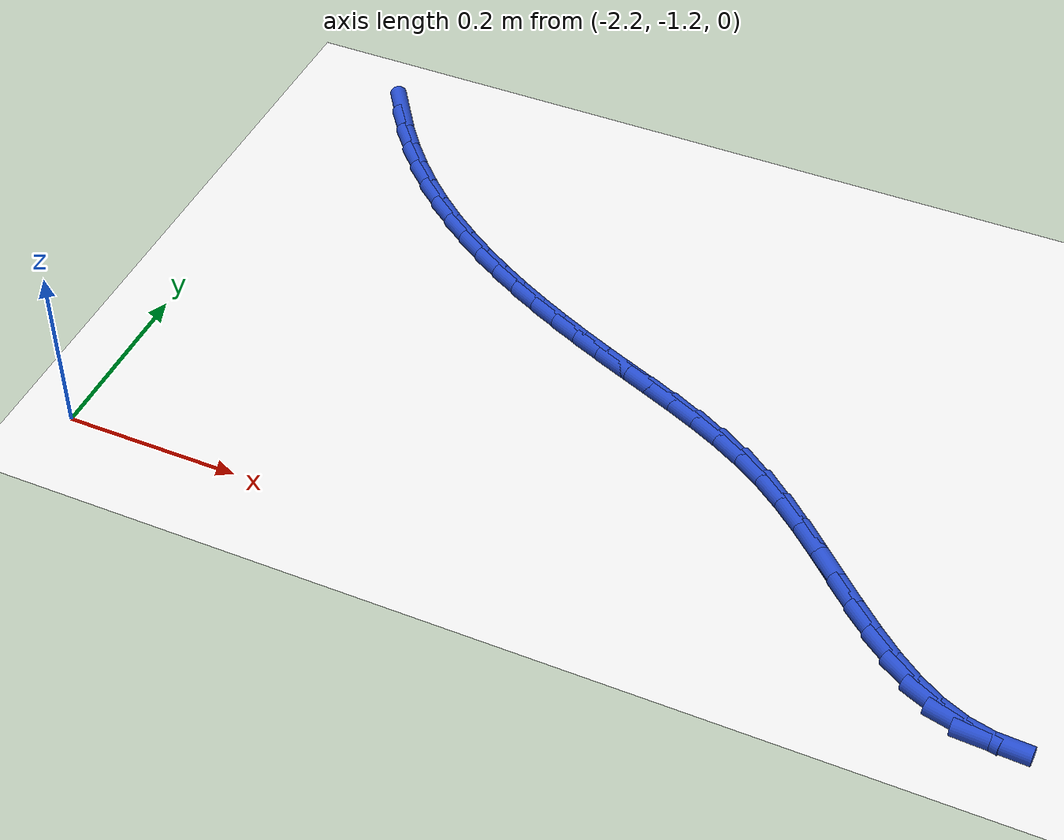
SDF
<sdf version="1.6">
 <world name="default">
  <model name="ground_plane">
   <static>1</static>
   <link name="link">
    <collision name="collision">
     <geometry><plane><normal>0 0 1</normal><size>100 100</size></plane></geometry>
     <surface><friction><ode><mu>100</mu><mu2>50</mu2></ode></friction></surface>
    </collision>
    <visual name="visual">
     <cast_shadows>0</cast_shadows>
     <geometry><plane><normal>0 0 1</normal><size>100 100</size></plane></geometry>
     <material>
      <script><uri>file://media/materials/scripts/gazebo.material</uri><name>Gazebo/WhiteGlow</name></script>
     </material>
    </visual>
   </link>
  </model>
  <model name="line">
   <link name="link_116">
    <pose>-2.1059230437652556 -0.5837642802311401 0.01 0 1.57 -0.9792117874503449</pose>
    <collision name="collision">
     <geometry><cylinder><radius>0.01</radius><length>0.08</length></cylinder></geometry>
    </collision>
    <visual name="visual">
     <material>
      <script><name>Gazebo/Blue</name><uri>file://media/materials/scripts/gazebo.material</uri></script>
     </material>
     <geometry><cylinder><radius>0.01</radius><length>0.08</length></cylinder></geometry>
    </visual>
   </link>
   <link name="link_117">
    <pose>-2.0852035942034113 -0.6146035414293193 0.01 0 1.57 -0.9177109253650406</pose>
    <collision name="collision">
     <geometry><cylinder><radius>0.01</radius><length>0.08</length></cylinder></geometry>
    </collision>
    <visual name="visual">
     <material>
      <script><name>Gazebo/Blue</name><uri>file://media/materials/scripts/gazebo.material</uri></script>
     </material>
     <geometry><cylinder><radius>0.01</radius><length>0.08</length></cylinder></geometry>
    </visual>
   </link>
   <link name="link_118">
    <pose>-2.0625675857700183 -0.6441898327590037 0.01 0 1.57 -0.858376823012623</pose>
    <collision name="collision">
     <geometry><cylinder><radius>0.01</radius><length>0.08</length></cylinder></geometry>
    </collision>
    <visual name="visual">
     <material>
      <script><name>Gazebo/Blue</name><uri>file://media/materials/scripts/gazebo.material</uri></script>
     </material>
     <geometry><cylinder><radius>0.01</radius><length>0.08</length></cylinder></geometry>
    </visual>
   </link>
   <link name="link_119">
    <pose>-2.0383021873057676 -0.6722830940293862 0.01 0 1.57 -0.7999015486544254</pose>
    <collision name="collision">
     <geometry><cylinder><radius>0.01</radius><length>0.08</length></cylinder></geometry>
    </collision>
    <visual name="visual">
     <material>
      <script><name>Gazebo/Blue</name><uri>file://media/materials/scripts/gazebo.material</uri></script>
     </material>
     <geometry><cylinder><radius>0.01</radius><length>0.08</length></cylinder></geometry>
    </visual>
   </link>
   <link name="link_120">
    <pose>-2.0126932907393096 -0.6986458077375122 0.01 0 1.57 -0.7424933770143362</pose>
    <collision name="collision">
     <geometry><cylinder><radius>0.01</radius><length>0.08</length></cylinder></geometry>
    </collision>
    <visual name="visual">
     <material>
      <script><name>Gazebo/Blue</name><uri>file://media/materials/scripts/gazebo.material</uri></script>
     </material>
     <geometry><cylinder><radius>0.01</radius><length>0.08</length></cylinder></geometry>
    </visual>
   </link>
   <link name="link_121">
    <pose>-1.9859555714209538 -0.7231822684417685 0.01 0 1.57 -0.6882323632078183</pose>
    <collision name="collision">
     <geometry><cylinder><radius>0.01</radius><length>0.08</length></cylinder></geometry>
    </collision>
    <visual name="visual">
     <material>
      <script><name>Gazebo/Blue</name><uri>file://media/materials/scripts/gazebo.material</uri></script>
     </material>
     <geometry><cylinder><radius>0.01</radius><length>0.08</length></cylinder></geometry>
    </visual>
   </link>
   <link name="link_122">
    <pose>-1.9581963158774756 -0.7460106117862123 0.01 0 1.57 -0.6377705764702852</pose>
    <collision name="collision">
     <geometry><cylinder><radius>0.01</radius><length>0.08</length></cylinder></geometry>
    </collision>
    <visual name="visual">
     <material>
      <script><name>Gazebo/Blue</name><uri>file://media/materials/scripts/gazebo.material</uri></script>
     </material>
     <geometry><cylinder><radius>0.01</radius><length>0.08</length></cylinder></geometry>
    </visual>
   </link>
   <link name="link_123">
    <pose>-1.9295139144868398 -0.7672666881272654 0.01 0 1.57 -0.5914721793704135</pose>
    <collision name="collision">
     <geometry><cylinder><radius>0.01</radius><length>0.08</length></cylinder></geometry>
    </collision>
    <visual name="visual">
     <material>
      <script><name>Gazebo/Blue</name><uri>file://media/materials/scripts/gazebo.material</uri></script>
     </material>
     <geometry><cylinder><radius>0.01</radius><length>0.08</length></cylinder></geometry>
    </visual>
   </link>
   <link name="link_124">
    <pose>-1.9000067576270117 -0.78708634782135 0.01 0 1.57 -0.5495855377856596</pose>
    <collision name="collision">
     <geometry><cylinder><radius>0.01</radius><length>0.08</length></cylinder></geometry>
    </collision>
    <visual name="visual">
     <material>
      <script><name>Gazebo/Blue</name><uri>file://media/materials/scripts/gazebo.material</uri></script>
     </material>
     <geometry><cylinder><radius>0.01</radius><length>0.08</length></cylinder></geometry>
    </visual>
   </link>
   <link name="link_125">
    <pose>-1.8697732356759547 -0.8056054412248876 0.01 0 1.57 -0.5122611004808914</pose>
    <collision name="collision">
     <geometry><cylinder><radius>0.01</radius><length>0.08</length></cylinder></geometry>
    </collision>
    <visual name="visual">
     <material>
      <script><name>Gazebo/Blue</name><uri>file://media/materials/scripts/gazebo.material</uri></script>
     </material>
     <geometry><cylinder><radius>0.01</radius><length>0.08</length></cylinder></geometry>
    </visual>
   </link>
   <link name="link_126">
    <pose>-1.8389117390116343 -0.8229598186943003 0.01 0 1.57 -0.47957319753899363</pose>
    <collision name="collision">
     <geometry><cylinder><radius>0.01</radius><length>0.08</length></cylinder></geometry>
    </collision>
    <visual name="visual">
     <material>
      <script><name>Gazebo/Blue</name><uri>file://media/materials/scripts/gazebo.material</uri></script>
     </material>
     <geometry><cylinder><radius>0.01</radius><length>0.08</length></cylinder></geometry>
    </visual>
   </link>
   <link name="link_127">
    <pose>-1.807520658012015 -0.83928533058601 0.01 0 1.57 -0.4515425178380584</pose>
    <collision name="collision">
     <geometry><cylinder><radius>0.01</radius><length>0.08</length></cylinder></geometry>
    </collision>
    <visual name="visual">
     <material>
      <script><name>Gazebo/Blue</name><uri>file://media/materials/scripts/gazebo.material</uri></script>
     </material>
     <geometry><cylinder><radius>0.01</radius><length>0.08</length></cylinder></geometry>
    </visual>
   </link>
   <link name="link_128">
    <pose>-1.7756983830550606 -0.8547178272564384 0.01 0 1.57 -0.428157072622884</pose>
    <collision name="collision">
     <geometry><cylinder><radius>0.01</radius><length>0.08</length></cylinder></geometry>
    </collision>
    <visual name="visual">
     <material>
      <script><name>Gazebo/Blue</name><uri>file://media/materials/scripts/gazebo.material</uri></script>
     </material>
     <geometry><cylinder><radius>0.01</radius><length>0.08</length></cylinder></geometry>
    </visual>
   </link>
   <link name="link_129">
    <pose>-1.7435433045187356 -0.869393159062007 0.01 0 1.57 -0.4093904455182528</pose>
    <collision name="collision">
     <geometry><cylinder><radius>0.01</radius><length>0.08</length></cylinder></geometry>
    </collision>
    <visual name="visual">
     <material>
      <script><name>Gazebo/Blue</name><uri>file://media/materials/scripts/gazebo.material</uri></script>
     </material>
     <geometry><cylinder><radius>0.01</radius><length>0.08</length></cylinder></geometry>
    </visual>
   </link>
   <link name="link_130">
    <pose>-1.7111538127810062 -0.8834471763591384 0.01 0 1.57 -0.3952170333772933</pose>
    <collision name="collision">
     <geometry><cylinder><radius>0.01</radius><length>0.08</length></cylinder></geometry>
    </collision>
    <visual name="visual">
     <material>
      <script><name>Gazebo/Blue</name><uri>file://media/materials/scripts/gazebo.material</uri></script>
     </material>
     <geometry><cylinder><radius>0.01</radius><length>0.08</length></cylinder></geometry>
    </visual>
   </link>
   <link name="link_131">
    <pose>-1.678628299033636 -0.897015734747117 0.01 0 1.57 -0.3876579027440681</pose>
    <collision name="collision">
     <geometry><cylinder><radius>0.01</radius><length>0.08</length></cylinder></geometry>
    </collision>
    <visual name="visual">
     <material>
      <script><name>Gazebo/Blue</name><uri>file://media/materials/scripts/gazebo.material</uri></script>
     </material>
     <geometry><cylinder><radius>0.01</radius><length>0.08</length></cylinder></geometry>
    </visual>
   </link>
   <link name="link_132">
    <pose>-1.6460764260205245 -0.910307306128965 0.01 0 1.57 -0.3938979434855265</pose>
    <collision name="collision">
     <geometry><cylinder><radius>0.01</radius><length>0.08</length></cylinder></geometry>
    </collision>
    <visual name="visual">
     <material>
      <script><name>Gazebo/Blue</name><uri>file://media/materials/scripts/gazebo.material</uri></script>
     </material>
     <geometry><cylinder><radius>0.01</radius><length>0.08</length></cylinder></geometry>
    </visual>
   </link>
   <link name="link_133">
    <pose>-1.61364744379427 -0.9237854012877881 0.01 0 1.57 -0.4155202293874139</pose>
    <collision name="collision">
     <geometry><cylinder><radius>0.01</radius><length>0.08</length></cylinder></geometry>
    </collision>
    <visual name="visual">
     <material>
      <script><name>Gazebo/Blue</name><uri>file://media/materials/scripts/gazebo.material</uri></script>
     </material>
     <geometry><cylinder><radius>0.01</radius><length>0.08</length></cylinder></geometry>
    </visual>
   </link>
   <link name="link_134">
    <pose>-1.5814992886197516 -0.9379694914123072 0.01 0 1.57 -0.45235419028061297</pose>
    <collision name="collision">
     <geometry><cylinder><radius>0.01</radius><length>0.08</length></cylinder></geometry>
    </collision>
    <visual name="visual">
     <material>
      <script><name>Gazebo/Blue</name><uri>file://media/materials/scripts/gazebo.material</uri></script>
     </material>
     <geometry><cylinder><radius>0.01</radius><length>0.08</length></cylinder></geometry>
    </visual>
   </link>
   <link name="link_135">
    <pose>-1.54978989676185 -0.9533790476912438 0.01 0 1.57 -0.5038916771160871</pose>
    <collision name="collision">
     <geometry><cylinder><radius>0.01</radius><length>0.08</length></cylinder></geometry>
    </collision>
    <visual name="visual">
     <material>
      <script><name>Gazebo/Blue</name><uri>file://media/materials/scripts/gazebo.material</uri></script>
     </material>
     <geometry><cylinder><radius>0.01</radius><length>0.08</length></cylinder></geometry>
    </visual>
   </link>
   <link name="link_136">
    <pose>-1.518677204485443 -0.9705335413133184 0.01 0 1.57 -0.5690735350395899</pose>
    <collision name="collision">
     <geometry><cylinder><radius>0.01</radius><length>0.08</length></cylinder></geometry>
    </collision>
    <visual name="visual">
     <material>
      <script><name>Gazebo/Blue</name><uri>file://media/materials/scripts/gazebo.material</uri></script>
     </material>
     <geometry><cylinder><radius>0.01</radius><length>0.08</length></cylinder></geometry>
    </visual>
   </link>
   <link name="link_137">
    <pose>-1.488319148055411 -0.9899524434672524 0.01 0 1.57 -0.6437382524879982</pose>
    <collision name="collision">
     <geometry><cylinder><radius>0.01</radius><length>0.08</length></cylinder></geometry>
    </collision>
    <visual name="visual">
     <material>
      <script><name>Gazebo/Blue</name><uri>file://media/materials/scripts/gazebo.material</uri></script>
     </material>
     <geometry><cylinder><radius>0.01</radius><length>0.08</length></cylinder></geometry>
    </visual>
   </link>
   <link name="link_138">
    <pose>-1.4588512226503314 -1.012064308420987 0.01 0 1.57 -0.7055550084187838</pose>
    <collision name="collision">
     <geometry><cylinder><radius>0.01</radius><length>0.08</length></cylinder></geometry>
    </collision>
    <visual name="visual">
     <material>
      <script><name>Gazebo/Blue</name><uri>file://media/materials/scripts/gazebo.material</uri></script>
     </material>
     <geometry><cylinder><radius>0.01</radius><length>0.08</length></cylinder></geometry>
    </visual>
   </link>
   <link name="link_139">
    <pose>-1.4302038725936679 -1.0364669555974806 0.01 0 1.57 -0.7453104140917537</pose>
    <collision name="collision">
     <geometry><cylinder><radius>0.01</radius><length>0.08</length></cylinder></geometry>
    </collision>
    <visual name="visual">
     <material>
      <script><name>Gazebo/Blue</name><uri>file://media/materials/scripts/gazebo.material</uri></script>
     </material>
     <geometry><cylinder><radius>0.01</radius><length>0.08</length></cylinder></geometry>
    </visual>
   </link>
   <link name="link_140">
    <pose>-1.4021976912987832 -1.062313158829793 0.01 0 1.57 -0.7648919755524992</pose>
    <collision name="collision">
     <geometry><cylinder><radius>0.01</radius><length>0.08</length></cylinder></geometry>
    </collision>
    <visual name="visual">
     <material>
      <script><name>Gazebo/Blue</name><uri>file://media/materials/scripts/gazebo.material</uri></script>
     </material>
     <geometry><cylinder><radius>0.01</radius><length>0.08</length></cylinder></geometry>
    </visual>
   </link>
   <link name="link_141">
    <pose>-1.3746522287984055 -1.0887514648403418 0.01 0 1.57 -0.7650762265259812</pose>
    <collision name="collision">
     <geometry><cylinder><radius>0.01</radius><length>0.08</length></cylinder></geometry>
    </collision>
    <visual name="visual">
     <material>
      <script><name>Gazebo/Blue</name><uri>file://media/materials/scripts/gazebo.material</uri></script>
     </material>
     <geometry><cylinder><radius>0.01</radius><length>0.08</length></cylinder></geometry>
    </visual>
   </link>
   <link name="link_142">
    <pose>-1.34738703512526 -1.1149304203515464 0.01 0 1.57 -0.7452688186608132</pose>
    <collision name="collision">
     <geometry><cylinder><radius>0.01</radius><length>0.08</length></cylinder></geometry>
    </collision>
    <visual name="visual">
     <material>
      <script><name>Gazebo/Blue</name><uri>file://media/materials/scripts/gazebo.material</uri></script>
     </material>
     <geometry><cylinder><radius>0.01</radius><length>0.08</length></cylinder></geometry>
    </visual>
   </link>
   <link name="link_143">
    <pose>-1.3202216603120736 -1.1399985720858234 0.01 0 1.57 -0.7033591772566838</pose>
    <collision name="collision">
     <geometry><cylinder><radius>0.01</radius><length>0.08</length></cylinder></geometry>
    </collision>
    <visual name="visual">
     <material>
      <script><name>Gazebo/Blue</name><uri>file://media/materials/scripts/gazebo.material</uri></script>
     </material>
     <geometry><cylinder><radius>0.01</radius><length>0.08</length></cylinder></geometry>
    </visual>
   </link>
   <link name="link_144">
    <pose>-1.2929756543915725 -1.163104466765591 0.01 0 1.57 -0.635587378107653</pose>
    <collision name="collision">
     <geometry><cylinder><radius>0.01</radius><length>0.08</length></cylinder></geometry>
    </collision>
    <visual name="visual">
     <material>
      <script><name>Gazebo/Blue</name><uri>file://media/materials/scripts/gazebo.material</uri></script>
     </material>
     <geometry><cylinder><radius>0.01</radius><length>0.08</length></cylinder></geometry>
    </visual>
   </link>
   <link name="link_145">
    <pose>-1.2654685673964834 -1.183396651113267 0.01 0 1.57 -0.5366713116383797</pose>
    <collision name="collision">
     <geometry><cylinder><radius>0.01</radius><length>0.08</length></cylinder></geometry>
    </collision>
    <visual name="visual">
     <material>
      <script><name>Gazebo/Blue</name><uri>file://media/materials/scripts/gazebo.material</uri></script>
     </material>
     <geometry><cylinder><radius>0.01</radius><length>0.08</length></cylinder></geometry>
    </visual>
   </link>
   <link name="link_146">
    <pose>-1.237519949359533 -1.2000236718512691 0.01 0 1.57 -0.4009185983724418</pose>
    <collision name="collision">
     <geometry><cylinder><radius>0.01</radius><length>0.08</length></cylinder></geometry>
    </collision>
    <visual name="visual">
     <material>
      <script><name>Gazebo/Blue</name><uri>file://media/materials/scripts/gazebo.material</uri></script>
     </material>
     <geometry><cylinder><radius>0.01</radius><length>0.08</length></cylinder></geometry>
    </visual>
   </link>
   <link name="link_147">
    <pose>-1.2089493503134474 -1.2121340757020151 0.01 0 1.57 -0.22695179649214328</pose>
    <collision name="collision">
     <geometry><cylinder><radius>0.01</radius><length>0.08</length></cylinder></geometry>
    </collision>
    <visual name="visual">
     <material>
      <script><name>Gazebo/Blue</name><uri>file://media/materials/scripts/gazebo.material</uri></script>
     </material>
     <geometry><cylinder><radius>0.01</radius><length>0.08</length></cylinder></geometry>
    </visual>
   </link>
   <link name="link_148">
    <pose>-1.1795826995285201 -1.218915726061063 0.01 0 1.57 -0.04623784576637723</pose>
    <collision name="collision">
     <geometry><cylinder><radius>0.01</radius><length>0.08</length></cylinder></geometry>
    </collision>
    <visual name="visual">
     <material>
      <script><name>Gazebo/Blue</name><uri>file://media/materials/scripts/gazebo.material</uri></script>
     </material>
     <geometry><cylinder><radius>0.01</radius><length>0.08</length></cylinder></geometry>
    </visual>
   </link>
  </model>
 </world>
</sdf>
